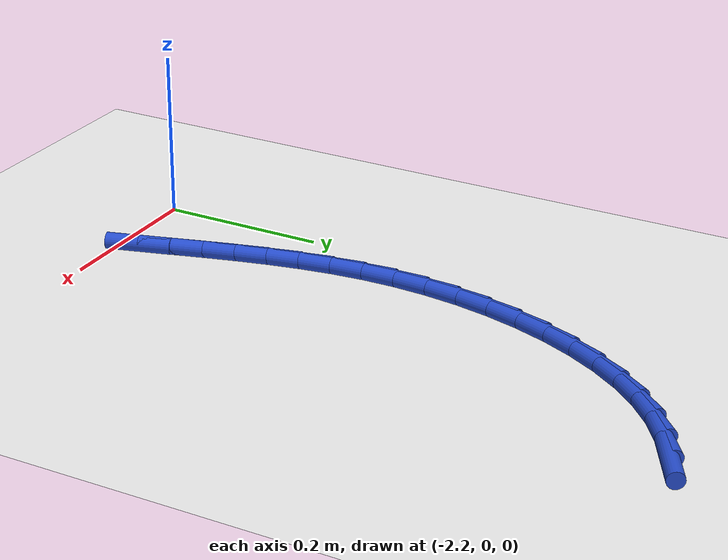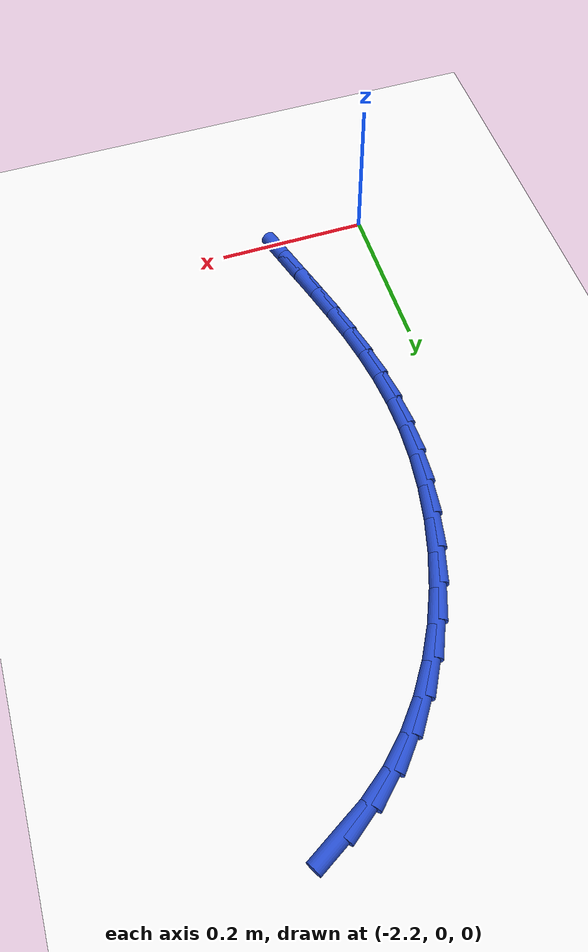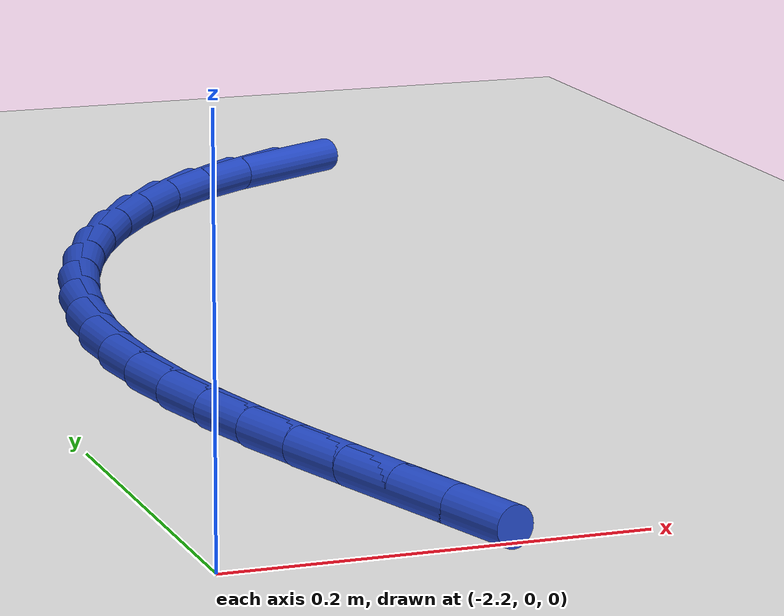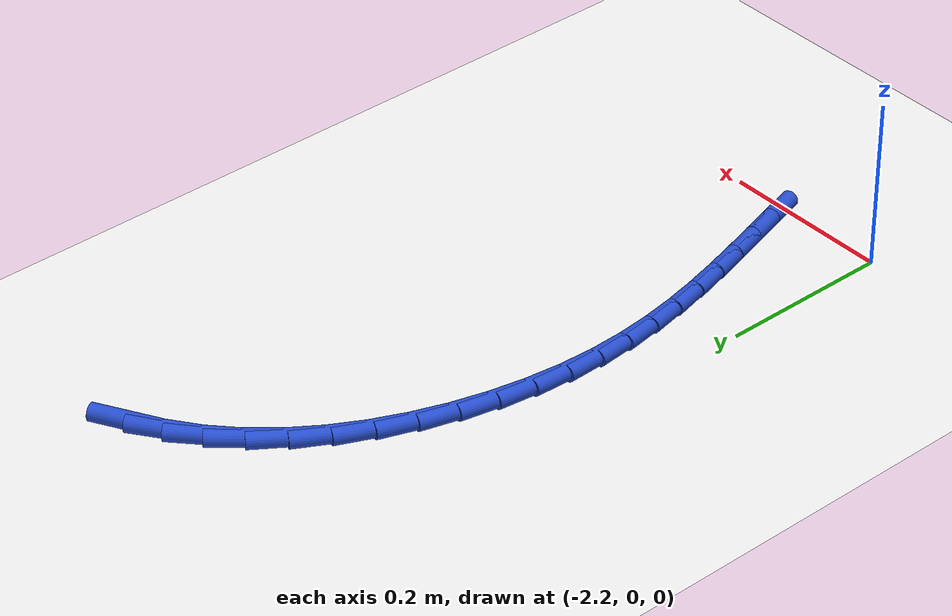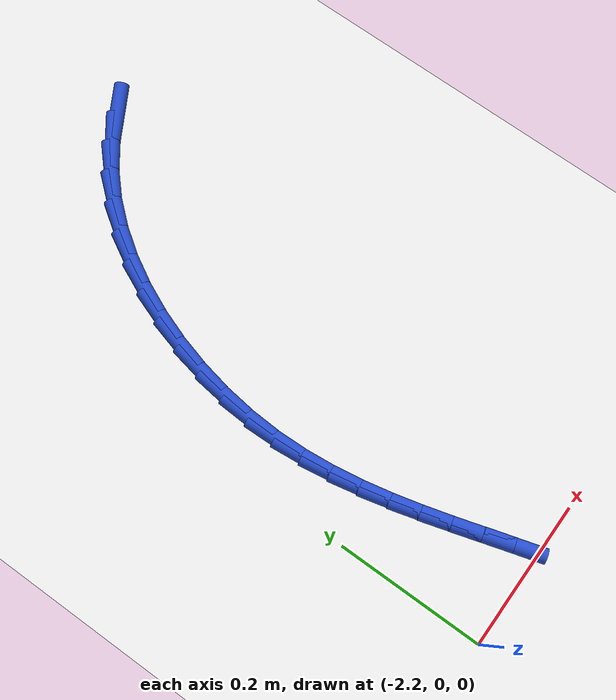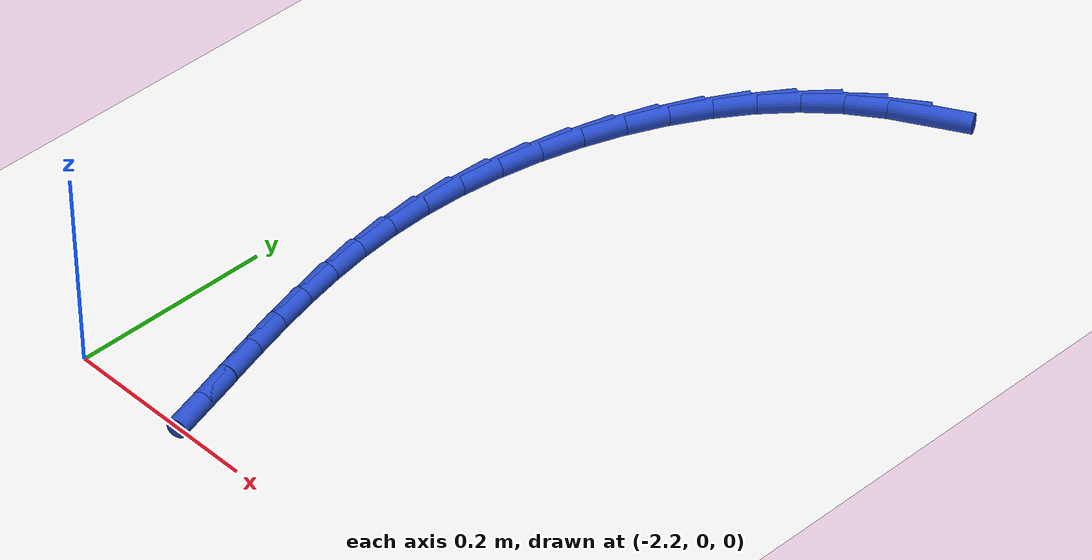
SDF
<sdf version="1.6">
 <world name="default">
  <model name="ground_plane">
   <static>1</static>
   <link name="link">
    <collision name="collision">
     <geometry><plane><normal>0 0 1</normal><size>100 100</size></plane></geometry>
     <surface><friction><ode><mu>100</mu><mu2>50</mu2></ode></friction></surface>
    </collision>
    <visual name="visual">
     <cast_shadows>0</cast_shadows>
     <geometry><plane><normal>0 0 1</normal><size>100 100</size></plane></geometry>
     <material>
      <script><uri>file://media/materials/scripts/gazebo.material</uri><name>Gazebo/WhiteGlow</name></script>
     </material>
    </visual>
   </link>
  </model>
  <model name="line">
   <link name="link_64">
    <pose>-1.9113541136947 0.7685727667209888 0.01 0 1.57 0.5120606206509861</pose>
    <collision name="collision">
     <geometry><cylinder><radius>0.01</radius><length>0.08</length></cylinder></geometry>
    </collision>
    <visual name="visual">
     <material>
      <script><name>Gazebo/Blue</name><uri>file://media/materials/scripts/gazebo.material</uri></script>
     </material>
     <geometry><cylinder><radius>0.01</radius><length>0.08</length></cylinder></geometry>
    </visual>
   </link>
   <link name="link_65">
    <pose>-1.9469169320226682 0.7485840732319211 0.01 0 1.57 0.624495679351274</pose>
    <collision name="collision">
     <geometry><cylinder><radius>0.01</radius><length>0.08</length></cylinder></geometry>
    </collision>
    <visual name="visual">
     <material>
      <script><name>Gazebo/Blue</name><uri>file://media/materials/scripts/gazebo.material</uri></script>
     </material>
     <geometry><cylinder><radius>0.01</radius><length>0.08</length></cylinder></geometry>
    </visual>
   </link>
   <link name="link_66">
    <pose>-1.9798914871786766 0.7248187217383987 0.01 0 1.57 0.7495319818036402</pose>
    <collision name="collision">
     <geometry><cylinder><radius>0.01</radius><length>0.08</length></cylinder></geometry>
    </collision>
    <visual name="visual">
     <material>
      <script><name>Gazebo/Blue</name><uri>file://media/materials/scripts/gazebo.material</uri></script>
     </material>
     <geometry><cylinder><radius>0.01</radius><length>0.08</length></cylinder></geometry>
    </visual>
   </link>
   <link name="link_67">
    <pose>-2.0098843971127023 0.6969036413393274 0.01 0 1.57 0.8652902120515885</pose>
    <collision name="collision">
     <geometry><cylinder><radius>0.01</radius><length>0.08</length></cylinder></geometry>
    </collision>
    <visual name="visual">
     <material>
      <script><name>Gazebo/Blue</name><uri>file://media/materials/scripts/gazebo.material</uri></script>
     </material>
     <geometry><cylinder><radius>0.01</radius><length>0.08</length></cylinder></geometry>
    </visual>
   </link>
   <link name="link_68">
    <pose>-2.0368318744263165 0.6652656687604622 0.01 0 1.57 0.9694951954688829</pose>
    <collision name="collision">
     <geometry><cylinder><radius>0.01</radius><length>0.08</length></cylinder></geometry>
    </collision>
    <visual name="visual">
     <material>
      <script><name>Gazebo/Blue</name><uri>file://media/materials/scripts/gazebo.material</uri></script>
     </material>
     <geometry><cylinder><radius>0.01</radius><length>0.08</length></cylinder></geometry>
    </visual>
   </link>
   <link name="link_69">
    <pose>-2.060718231027224 0.6304483750302506 0.01 0 1.57 1.0636508722380829</pose>
    <collision name="collision">
     <geometry><cylinder><radius>0.01</radius><length>0.08</length></cylinder></geometry>
    </collision>
    <visual name="visual">
     <material>
      <script><name>Gazebo/Blue</name><uri>file://media/materials/scripts/gazebo.material</uri></script>
     </material>
     <geometry><cylinder><radius>0.01</radius><length>0.08</length></cylinder></geometry>
    </visual>
   </link>
   <link name="link_70">
    <pose>-2.08152777882313 0.5929953311771392 0.01 0 1.57 1.1495901873647019</pose>
    <collision name="collision">
     <geometry><cylinder><radius>0.01</radius><length>0.08</length></cylinder></geometry>
    </collision>
    <visual name="visual">
     <material>
      <script><name>Gazebo/Blue</name><uri>file://media/materials/scripts/gazebo.material</uri></script>
     </material>
     <geometry><cylinder><radius>0.01</radius><length>0.08</length></cylinder></geometry>
    </visual>
   </link>
   <link name="link_71">
    <pose>-2.0992448297217403 0.5534501082295749 0.01 0 1.57 1.229229963399816</pose>
    <collision name="collision">
     <geometry><cylinder><radius>0.01</radius><length>0.08</length></cylinder></geometry>
    </collision>
    <visual name="visual">
     <material>
      <script><name>Gazebo/Blue</name><uri>file://media/materials/scripts/gazebo.material</uri></script>
     </material>
     <geometry><cylinder><radius>0.01</radius><length>0.08</length></cylinder></geometry>
    </visual>
   </link>
   <link name="link_72">
    <pose>-2.1138536956307603 0.5123562772160049 0.01 0 1.57 1.3044672652421363</pose>
    <collision name="collision">
     <geometry><cylinder><radius>0.01</radius><length>0.08</length></cylinder></geometry>
    </collision>
    <visual name="visual">
     <material>
      <script><name>Gazebo/Blue</name><uri>file://media/materials/scripts/gazebo.material</uri></script>
     </material>
     <geometry><cylinder><radius>0.01</radius><length>0.08</length></cylinder></geometry>
    </visual>
   </link>
   <link name="link_73">
    <pose>-2.1253386884578953 0.470257409164876 0.01 0 1.57 1.3771682676088417</pose>
    <collision name="collision">
     <geometry><cylinder><radius>0.01</radius><length>0.08</length></cylinder></geometry>
    </collision>
    <visual name="visual">
     <material>
      <script><name>Gazebo/Blue</name><uri>file://media/materials/scripts/gazebo.material</uri></script>
     </material>
     <geometry><cylinder><radius>0.01</radius><length>0.08</length></cylinder></geometry>
    </visual>
   </link>
   <link name="link_74">
    <pose>-2.13368412011085 0.4276970751046347 0.01 0 1.57 1.4492144426421163</pose>
    <collision name="collision">
     <geometry><cylinder><radius>0.01</radius><length>0.08</length></cylinder></geometry>
    </collision>
    <visual name="visual">
     <material>
      <script><name>Gazebo/Blue</name><uri>file://media/materials/scripts/gazebo.material</uri></script>
     </material>
     <geometry><cylinder><radius>0.01</radius><length>0.08</length></cylinder></geometry>
    </visual>
   </link>
   <link name="link_75">
    <pose>-2.1388743024973307 0.38521884606372886 0.01 0 1.57 1.5225852887236422</pose>
    <collision name="collision">
     <geometry><cylinder><radius>0.01</radius><length>0.08</length></cylinder></geometry>
    </collision>
    <visual name="visual">
     <material>
      <script><name>Gazebo/Blue</name><uri>file://media/materials/scripts/gazebo.material</uri></script>
     </material>
     <geometry><cylinder><radius>0.01</radius><length>0.08</length></cylinder></geometry>
    </visual>
   </link>
   <link name="link_76">
    <pose>-2.1408936291857135 0.3433661497353158 0.01 0 1.57 -1.5445652107656922</pose>
    <collision name="collision">
     <geometry><cylinder><radius>0.01</radius><length>0.08</length></cylinder></geometry>
    </collision>
    <visual name="visual">
     <material>
      <script><name>Gazebo/Blue</name><uri>file://media/materials/scripts/gazebo.material</uri></script>
     </material>
     <geometry><cylinder><radius>0.01</radius><length>0.08</length></cylinder></geometry>
    </visual>
   </link>
   <link name="link_77">
    <pose>-2.1398218147508596 0.3025151011531618 0.01 0 1.57 -1.4758963082030871</pose>
    <collision name="collision">
     <geometry><cylinder><radius>0.01</radius><length>0.08</length></cylinder></geometry>
    </collision>
    <visual name="visual">
     <material>
      <script><name>Gazebo/Blue</name><uri>file://media/materials/scripts/gazebo.material</uri></script>
     </material>
     <geometry><cylinder><radius>0.01</radius><length>0.08</length></cylinder></geometry>
    </visual>
   </link>
   <link name="link_78">
    <pose>-2.1360178523482682 0.2625516102665503 0.01 0 1.57 -1.416076942888644</pose>
    <collision name="collision">
     <geometry><cylinder><radius>0.01</radius><length>0.08</length></cylinder></geometry>
    </collision>
    <visual name="visual">
     <material>
      <script><name>Gazebo/Blue</name><uri>file://media/materials/scripts/gazebo.material</uri></script>
     </material>
     <geometry><cylinder><radius>0.01</radius><length>0.08</length></cylinder></geometry>
    </visual>
   </link>
   <link name="link_79">
    <pose>-2.1298916164983717 0.22327227726194449 0.01 0 1.57 -1.3664979981574357</pose>
    <collision name="collision">
     <geometry><cylinder><radius>0.01</radius><length>0.08</length></cylinder></geometry>
    </collision>
    <visual name="visual">
     <material>
      <script><name>Gazebo/Blue</name><uri>file://media/materials/scripts/gazebo.material</uri></script>
     </material>
     <geometry><cylinder><radius>0.01</radius><length>0.08</length></cylinder></geometry>
    </visual>
   </link>
   <link name="link_80">
    <pose>-2.1218529817216023 0.18447370232580967 0.01 0 1.57 -1.3279968975760823</pose>
    <collision name="collision">
     <geometry><cylinder><radius>0.01</radius><length>0.08</length></cylinder></geometry>
    </collision>
    <visual name="visual">
     <material>
      <script><name>Gazebo/Blue</name><uri>file://media/materials/scripts/gazebo.material</uri></script>
     </material>
     <geometry><cylinder><radius>0.01</radius><length>0.08</length></cylinder></geometry>
    </visual>
   </link>
   <link name="link_81">
    <pose>-2.1123118225383952 0.14595248564460978 0.01 0 1.57 -1.3009601926920586</pose>
    <collision name="collision">
     <geometry><cylinder><radius>0.01</radius><length>0.08</length></cylinder></geometry>
    </collision>
    <visual name="visual">
     <material>
      <script><name>Gazebo/Blue</name><uri>file://media/materials/scripts/gazebo.material</uri></script>
     </material>
     <geometry><cylinder><radius>0.01</radius><length>0.08</length></cylinder></geometry>
    </visual>
   </link>
   <link name="link_82">
    <pose>-2.1016780134691846 0.10750522740480879 0.01 0 1.57 -1.2854489444095845</pose>
    <collision name="collision">
     <geometry><cylinder><radius>0.01</radius><length>0.08</length></cylinder></geometry>
    </collision>
    <visual name="visual">
     <material>
      <script><name>Gazebo/Blue</name><uri>file://media/materials/scripts/gazebo.material</uri></script>
     </material>
     <geometry><cylinder><radius>0.01</radius><length>0.08</length></cylinder></geometry>
    </visual>
   </link>
   <link name="link_83">
    <pose>-2.090361429034402 0.06892852779287176 0.01 0 1.57 -1.2813065990793016</pose>
    <collision name="collision">
     <geometry><cylinder><radius>0.01</radius><length>0.08</length></cylinder></geometry>
    </collision>
    <visual name="visual">
     <material>
      <script><name>Gazebo/Blue</name><uri>file://media/materials/scripts/gazebo.material</uri></script>
     </material>
     <geometry><cylinder><radius>0.01</radius><length>0.08</length></cylinder></geometry>
    </visual>
   </link>
   <link name="link_84">
    <pose>-2.0787719437544814 0.030018986995262197 0.01 0 1.57 -1.2882294400396006</pose>
    <collision name="collision">
     <geometry><cylinder><radius>0.01</radius><length>0.08</length></cylinder></geometry>
    </collision>
    <visual name="visual">
     <material>
      <script><name>Gazebo/Blue</name><uri>file://media/materials/scripts/gazebo.material</uri></script>
     </material>
     <geometry><cylinder><radius>0.01</radius><length>0.08</length></cylinder></geometry>
    </visual>
   </link>
  </model>
 </world>
</sdf>
